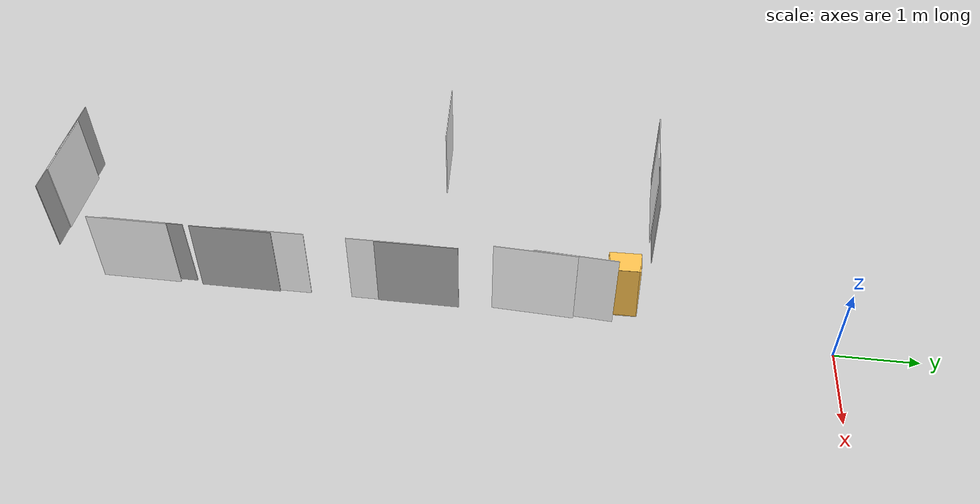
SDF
<sdf version="1.6">
 <world name="default">
  <model name="ground_plane">
   <static>1</static>
   <link name="link">
    <collision name="collision">
     <geometry><plane><normal>0 0 1</normal><size>100 100</size></plane></geometry>
     <surface><friction><ode><mu>100</mu><mu2>50</mu2></ode></friction></surface>
    </collision>
    <visual name="visual">
     <cast_shadows>0</cast_shadows>
     <geometry><plane><normal>0 0 1</normal><size>100 100</size></plane></geometry>
     <material>
      <script><uri>file://media/materials/scripts/gazebo.material</uri><name>Gazebo/Grey</name></script>
     </material>
    </visual>
   </link>
  </model>
  <model name="Gas_2">
   <link name="link_0">
    <pose>4e-06 0 0 0 -0 0</pose>
    <inertial>
     <mass>1</mass>
     <inertia>
      <ixx>0.166667</ixx>
      <ixy>0</ixy>
      <ixz>0</ixz>
      <iyy>0.166667</iyy>
      <iyz>0</iyz>
      <izz>0.166667</izz>
     </inertia>
    </inertial>
    <visual name="visual">
     <geometry><box><size>0.01 1 1</size></box></geometry>
     <material>
      <lighting>1</lighting>
      <script>
       <uri>model://gas_2_N/materials/scripts</uri>
       <uri>model://gas_2_N/materials/textures</uri>
       <name>Gas/Gas2N</name>
      </script>
      <ambient>1 1 1 1</ambient>
      <diffuse>1 1 1 1</diffuse>
      <specular>0.01 0.01 0.01 1</specular>
      <emissive>1 1 1 1</emissive>
     </material>
     <cast_shadows>0</cast_shadows>
    </visual>
    <collision name="collision">
     <geometry><box><size>0.01 1 1</size></box></geometry>
     <surface>
      <friction>
       <ode><mu>1</mu><mu2>1</mu2><fdir1>0 0 0</fdir1><slip1>0</slip1><slip2>0</slip2></ode>
       <torsional>
        <coefficient>1</coefficient>
        <patch_radius>0</patch_radius>
        <surface_radius>0</surface_radius>
        <use_patch_radius>1</use_patch_radius>
        <ode><slip>0</slip></ode>
       </torsional>
      </friction>
      <bounce><restitution_coefficient>0</restitution_coefficient><threshold>1e+06</threshold></bounce>
      <contact>
       <collide_without_contact>0</collide_without_contact>
       <collide_without_contact_bitmask>1</collide_without_contact_bitmask>
       <collide_bitmask>1</collide_bitmask>
       <ode>
        <soft_cfm>0</soft_cfm>
        <soft_erp>0.2</soft_erp>
        <kp>1e+13</kp>
        <kd>1</kd>
        <max_vel>0.01</max_vel>
        <min_depth>0</min_depth>
       </ode>
       <bullet>
        <split_impulse>1</split_impulse>
        <split_impulse_penetration_threshold>-0.01</split_impulse_penetration_threshold>
        <soft_cfm>0</soft_cfm>
        <soft_erp>0.2</soft_erp>
        <kp>1e+13</kp>
        <kd>1</kd>
       </bullet>
      </contact>
     </surface>
    </collision>
   </link>
   <static>0</static>
   <pose>-0.222112 -8.4847 0.499972 -6e-06 0.007088 -0.005093</pose>
  </model>
  <model name="Gas_4_1">
   <link name="link_0">
    <pose>4e-06 0 0 0 -0 0</pose>
    <inertial>
     <mass>1</mass>
     <inertia>
      <ixx>0.166667</ixx>
      <ixy>0</ixy>
      <ixz>0</ixz>
      <iyy>0.166667</iyy>
      <iyz>0</iyz>
      <izz>0.166667</izz>
     </inertia>
    </inertial>
    <visual name="visual">
     <geometry><box><size>0.01 1 1</size></box></geometry>
     <material>
      <lighting>1</lighting>
      <script>
       <uri>model://gas_4_N/materials/scripts</uri>
       <uri>model://gas_4_N/materials/textures</uri>
       <name>Gas/Gas4N</name>
      </script>
      <ambient>1 1 1 1</ambient>
      <diffuse>1 1 1 1</diffuse>
      <specular>0.01 0.01 0.01 1</specular>
      <emissive>1 1 1 1</emissive>
     </material>
     <cast_shadows>0</cast_shadows>
    </visual>
    <collision name="collision">
     <geometry><box><size>0.01 1 1</size></box></geometry>
     <surface>
      <friction>
       <ode><mu>1</mu><mu2>1</mu2><fdir1>0 0 0</fdir1><slip1>0</slip1><slip2>0</slip2></ode>
       <torsional>
        <coefficient>1</coefficient>
        <patch_radius>0</patch_radius>
        <surface_radius>0</surface_radius>
        <use_patch_radius>1</use_patch_radius>
        <ode><slip>0</slip></ode>
       </torsional>
      </friction>
      <bounce><restitution_coefficient>0</restitution_coefficient><threshold>1e+06</threshold></bounce>
      <contact>
       <collide_without_contact>0</collide_without_contact>
       <collide_without_contact_bitmask>1</collide_without_contact_bitmask>
       <collide_bitmask>1</collide_bitmask>
       <ode>
        <soft_cfm>0</soft_cfm>
        <soft_erp>0.2</soft_erp>
        <kp>1e+13</kp>
        <kd>1</kd>
        <max_vel>0.01</max_vel>
        <min_depth>0</min_depth>
       </ode>
       <bullet>
        <split_impulse>1</split_impulse>
        <split_impulse_penetration_threshold>-0.01</split_impulse_penetration_threshold>
        <soft_cfm>0</soft_cfm>
        <soft_erp>0.2</soft_erp>
        <kp>1e+13</kp>
        <kd>1</kd>
       </bullet>
      </contact>
     </surface>
    </collision>
   </link>
   <static>0</static>
   <pose>-1.50529 -9.77758 0.499816 -0 -0.038214 1.57007</pose>
  </model>
  <model name="Gas_1_0">
   <link name="link_0">
    <pose>4e-06 0 0 0 -0 0</pose>
    <inertial>
     <mass>1</mass>
     <inertia>
      <ixx>0.166667</ixx>
      <ixy>0</ixy>
      <ixz>0</ixz>
      <iyy>0.166667</iyy>
      <iyz>0</iyz>
      <izz>0.166667</izz>
     </inertia>
    </inertial>
    <visual name="visual">
     <geometry><box><size>0.01 1 1</size></box></geometry>
     <material>
      <lighting>1</lighting>
      <script>
       <uri>model://gas_1_N/materials/scripts</uri>
       <uri>model://gas_1_N/materials/textures</uri>
       <name>Gas/Gas1N</name>
      </script>
      <ambient>1 1 1 1</ambient>
      <diffuse>1 1 1 1</diffuse>
      <specular>0.01 0.01 0.01 1</specular>
      <emissive>1 1 1 1</emissive>
     </material>
     <cast_shadows>0</cast_shadows>
    </visual>
    <collision name="collision">
     <geometry><box><size>0.01 1 1</size></box></geometry>
     <surface>
      <friction>
       <ode><mu>1</mu><mu2>1</mu2><fdir1>0 0 0</fdir1><slip1>0</slip1><slip2>0</slip2></ode>
       <torsional>
        <coefficient>1</coefficient>
        <patch_radius>0</patch_radius>
        <surface_radius>0</surface_radius>
        <use_patch_radius>1</use_patch_radius>
        <ode><slip>0</slip></ode>
       </torsional>
      </friction>
      <bounce><restitution_coefficient>0</restitution_coefficient><threshold>1e+06</threshold></bounce>
      <contact>
       <collide_without_contact>0</collide_without_contact>
       <collide_without_contact_bitmask>1</collide_without_contact_bitmask>
       <collide_bitmask>1</collide_bitmask>
       <ode>
        <soft_cfm>0</soft_cfm>
        <soft_erp>0.2</soft_erp>
        <kp>1e+13</kp>
        <kd>1</kd>
        <max_vel>0.01</max_vel>
        <min_depth>0</min_depth>
       </ode>
       <bullet>
        <split_impulse>1</split_impulse>
        <split_impulse_penetration_threshold>-0.01</split_impulse_penetration_threshold>
        <soft_cfm>0</soft_cfm>
        <soft_erp>0.2</soft_erp>
        <kp>1e+13</kp>
        <kd>1</kd>
       </bullet>
      </contact>
     </surface>
    </collision>
   </link>
   <static>0</static>
   <pose>-0.236814 -6.81898 0.5 0 -2e-06 0.002062</pose>
  </model>
  <model name="Gas_4_0">
   <link name="link_0">
    <pose>4e-06 0 0 0 -0 0</pose>
    <inertial>
     <mass>1</mass>
     <inertia>
      <ixx>0.166667</ixx>
      <ixy>0</ixy>
      <ixz>0</ixz>
      <iyy>0.166667</iyy>
      <iyz>0</iyz>
      <izz>0.166667</izz>
     </inertia>
    </inertial>
    <visual name="visual">
     <geometry><box><size>0.01 1 1</size></box></geometry>
     <material>
      <lighting>1</lighting>
      <script>
       <uri>model://gas_4_N/materials/scripts</uri>
       <uri>model://gas_4_N/materials/textures</uri>
       <name>Gas/Gas4N</name>
      </script>
      <ambient>1 1 1 1</ambient>
      <diffuse>1 1 1 1</diffuse>
      <specular>0.01 0.01 0.01 1</specular>
      <emissive>1 1 1 1</emissive>
     </material>
     <cast_shadows>0</cast_shadows>
    </visual>
    <collision name="collision">
     <geometry><box><size>0.01 1 1</size></box></geometry>
     <surface>
      <friction>
       <ode><mu>1</mu><mu2>1</mu2><fdir1>0 0 0</fdir1><slip1>0</slip1><slip2>0</slip2></ode>
       <torsional>
        <coefficient>1</coefficient>
        <patch_radius>0</patch_radius>
        <surface_radius>0</surface_radius>
        <use_patch_radius>1</use_patch_radius>
        <ode><slip>0</slip></ode>
       </torsional>
      </friction>
      <bounce><restitution_coefficient>0</restitution_coefficient><threshold>1e+06</threshold></bounce>
      <contact>
       <collide_without_contact>0</collide_without_contact>
       <collide_without_contact_bitmask>1</collide_without_contact_bitmask>
       <collide_bitmask>1</collide_bitmask>
       <ode>
        <soft_cfm>0</soft_cfm>
        <soft_erp>0.2</soft_erp>
        <kp>1e+13</kp>
        <kd>1</kd>
        <max_vel>0.01</max_vel>
        <min_depth>0</min_depth>
       </ode>
       <bullet>
        <split_impulse>1</split_impulse>
        <split_impulse_penetration_threshold>-0.01</split_impulse_penetration_threshold>
        <soft_cfm>0</soft_cfm>
        <soft_erp>0.2</soft_erp>
        <kp>1e+13</kp>
        <kd>1</kd>
       </bullet>
      </contact>
     </surface>
    </collision>
   </link>
   <static>0</static>
   <pose>-0.234542 -5.30976 0.5 0 -1e-06 -0.000196</pose>
  </model>
  <model name="Gas_3_1">
   <link name="link_0">
    <pose>4e-06 0 0 0 -0 0</pose>
    <inertial>
     <mass>1</mass>
     <inertia>
      <ixx>0.166667</ixx>
      <ixy>0</ixy>
      <ixz>0</ixz>
      <iyy>0.166667</iyy>
      <iyz>0</iyz>
      <izz>0.166667</izz>
     </inertia>
    </inertial>
    <visual name="visual">
     <geometry><box><size>0.01 1 1</size></box></geometry>
     <material>
      <lighting>1</lighting>
      <script>
       <uri>model://gas_3_N/materials/scripts</uri>
       <uri>model://gas_3_N/materials/textures</uri>
       <name>Gas/Gas3N</name>
      </script>
      <ambient>1 1 1 1</ambient>
      <diffuse>1 1 1 1</diffuse>
      <specular>0.01 0.01 0.01 1</specular>
      <emissive>1 1 1 1</emissive>
     </material>
     <cast_shadows>0</cast_shadows>
    </visual>
    <collision name="collision">
     <geometry><box><size>0.01 1 1</size></box></geometry>
     <surface>
      <friction>
       <ode><mu>1</mu><mu2>1</mu2><fdir1>0 0 0</fdir1><slip1>0</slip1><slip2>0</slip2></ode>
       <torsional>
        <coefficient>1</coefficient>
        <patch_radius>0</patch_radius>
        <surface_radius>0</surface_radius>
        <use_patch_radius>1</use_patch_radius>
        <ode><slip>0</slip></ode>
       </torsional>
      </friction>
      <bounce><restitution_coefficient>0</restitution_coefficient><threshold>1e+06</threshold></bounce>
      <contact>
       <collide_without_contact>0</collide_without_contact>
       <collide_without_contact_bitmask>1</collide_without_contact_bitmask>
       <collide_bitmask>1</collide_bitmask>
       <ode>
        <soft_cfm>0</soft_cfm>
        <soft_erp>0.2</soft_erp>
        <kp>1e+13</kp>
        <kd>1</kd>
        <max_vel>0.01</max_vel>
        <min_depth>0</min_depth>
       </ode>
       <bullet>
        <split_impulse>1</split_impulse>
        <split_impulse_penetration_threshold>-0.01</split_impulse_penetration_threshold>
        <soft_cfm>0</soft_cfm>
        <soft_erp>0.2</soft_erp>
        <kp>1e+13</kp>
        <kd>1</kd>
       </bullet>
      </contact>
     </surface>
    </collision>
   </link>
   <static>0</static>
   <pose>-0.266643 -3.56804 0.499694 0 -0.046381 -0.054955</pose>
  </model>
  <model name="Gas_1_2">
   <link name="link_0">
    <pose>4e-06 0 0 0 -0 0</pose>
    <inertial>
     <mass>1</mass>
     <inertia>
      <ixx>0.166667</ixx>
      <ixy>0</ixy>
      <ixz>0</ixz>
      <iyy>0.166667</iyy>
      <iyz>0</iyz>
      <izz>0.166667</izz>
     </inertia>
    </inertial>
    <visual name="visual">
     <geometry><box><size>0.01 1 1</size></box></geometry>
     <material>
      <lighting>1</lighting>
      <script>
       <uri>model://gas_1_N/materials/scripts</uri>
       <uri>model://gas_1_N/materials/textures</uri>
       <name>Gas/Gas1N</name>
      </script>
      <ambient>1 1 1 1</ambient>
      <diffuse>1 1 1 1</diffuse>
      <specular>0.01 0.01 0.01 1</specular>
      <emissive>1 1 1 1</emissive>
     </material>
     <cast_shadows>0</cast_shadows>
    </visual>
    <collision name="collision">
     <geometry><box><size>0.01 1 1</size></box></geometry>
     <surface>
      <friction>
       <ode><mu>1</mu><mu2>1</mu2><fdir1>0 0 0</fdir1><slip1>0</slip1><slip2>0</slip2></ode>
       <torsional>
        <coefficient>1</coefficient>
        <patch_radius>0</patch_radius>
        <surface_radius>0</surface_radius>
        <use_patch_radius>1</use_patch_radius>
        <ode><slip>0</slip></ode>
       </torsional>
      </friction>
      <bounce><restitution_coefficient>0</restitution_coefficient><threshold>1e+06</threshold></bounce>
      <contact>
       <collide_without_contact>0</collide_without_contact>
       <collide_without_contact_bitmask>1</collide_without_contact_bitmask>
       <collide_bitmask>1</collide_bitmask>
       <ode>
        <soft_cfm>0</soft_cfm>
        <soft_erp>0.2</soft_erp>
        <kp>1e+13</kp>
        <kd>1</kd>
        <max_vel>0.01</max_vel>
        <min_depth>0</min_depth>
       </ode>
       <bullet>
        <split_impulse>1</split_impulse>
        <split_impulse_penetration_threshold>-0.01</split_impulse_penetration_threshold>
        <soft_cfm>0</soft_cfm>
        <soft_erp>0.2</soft_erp>
        <kp>1e+13</kp>
        <kd>1</kd>
       </bullet>
      </contact>
     </surface>
    </collision>
   </link>
   <static>0</static>
   <pose>-2.16004 -2.14796 0.5 -0 -2e-06 1.56216</pose>
  </model>
  <model name="Gas_1_3">
   <link name="link_0">
    <pose>4e-06 0 0 0 -0 0</pose>
    <inertial>
     <mass>1</mass>
     <inertia>
      <ixx>0.166667</ixx>
      <ixy>0</ixy>
      <ixz>0</ixz>
      <iyy>0.166667</iyy>
      <iyz>0</iyz>
      <izz>0.166667</izz>
     </inertia>
    </inertial>
    <visual name="visual">
     <geometry><box><size>0.01 1 1</size></box></geometry>
     <material>
      <lighting>1</lighting>
      <script>
       <uri>model://gas_1_N/materials/scripts</uri>
       <uri>model://gas_1_N/materials/textures</uri>
       <name>Gas/Gas1N</name>
      </script>
      <ambient>1 1 1 1</ambient>
      <diffuse>1 1 1 1</diffuse>
      <specular>0.01 0.01 0.01 1</specular>
      <emissive>1 1 1 1</emissive>
     </material>
     <cast_shadows>0</cast_shadows>
    </visual>
    <collision name="collision">
     <geometry><box><size>0.01 1 1</size></box></geometry>
     <surface>
      <friction>
       <ode><mu>1</mu><mu2>1</mu2><fdir1>0 0 0</fdir1><slip1>0</slip1><slip2>0</slip2></ode>
       <torsional>
        <coefficient>1</coefficient>
        <patch_radius>0</patch_radius>
        <surface_radius>0</surface_radius>
        <use_patch_radius>1</use_patch_radius>
        <ode><slip>0</slip></ode>
       </torsional>
      </friction>
      <bounce><restitution_coefficient>0</restitution_coefficient><threshold>1e+06</threshold></bounce>
      <contact>
       <collide_without_contact>0</collide_without_contact>
       <collide_without_contact_bitmask>1</collide_without_contact_bitmask>
       <collide_bitmask>1</collide_bitmask>
       <ode>
        <soft_cfm>0</soft_cfm>
        <soft_erp>0.2</soft_erp>
        <kp>1e+13</kp>
        <kd>1</kd>
        <max_vel>0.01</max_vel>
        <min_depth>0</min_depth>
       </ode>
       <bullet>
        <split_impulse>1</split_impulse>
        <split_impulse_penetration_threshold>-0.01</split_impulse_penetration_threshold>
        <soft_cfm>0</soft_cfm>
        <soft_erp>0.2</soft_erp>
        <kp>1e+13</kp>
        <kd>1</kd>
       </bullet>
      </contact>
     </surface>
    </collision>
   </link>
   <static>0</static>
   <pose>-2.79683 -4.93888 0.5 0 -2e-06 1.63067</pose>
  </model>
  <model name="Wall_Cabinet_15x30">
   <pose>-0.396854 -2.70414 0.461376 -1.54947 0 0</pose>
   <link name="Wall_0">
    <pose>0 0.374 0.192 0 -0 0</pose>
    <inertial>
     <mass>0.9882</mass>
     <inertia><ixx>0.0072</ixx><iyy>0.0194</iyy><izz>0.0122</izz><ixy>0</ixy><ixz>0</ixz><iyz>0</iyz></inertia>
    </inertial>
    <collision name="Wall_0_Collision"><geometry><box><size>0.296 0.02 0.384</size></box></geometry></collision>
    <visual name="Wall_0_Visual">
     <geometry><box><size>0.296 0.02 0.384</size></box></geometry>
     <material>
      <script><uri>file://media/materials/scripts/gazebo.material</uri><name>Gazebo/Grey</name></script>
      <ambient>1 0.764706 0.305882 1</ambient>
     </material>
    </visual>
   </link>
   <joint name="0_2" type="fixed">
    <pose>0 0 0.192 0 -0 0</pose>
    <parent>Wall_2</parent>
    <child>Wall_0</child>
    <axis>
     <xyz>0 0 1</xyz>
     <use_parent_model_frame>0</use_parent_model_frame>
     <limit><lower>-1e+16</lower><upper>1e+16</upper></limit>
    </axis>
   </joint>
   <joint name="0_4" type="fixed">
    <pose>0 0 -0.192 0 -0 0</pose>
    <parent>Wall_4</parent>
    <child>Wall_0</child>
    <axis>
     <xyz>0 0 1</xyz>
     <use_parent_model_frame>0</use_parent_model_frame>
     <limit><lower>-1e+16</lower><upper>1e+16</upper></limit>
    </axis>
   </joint>
   <joint name="0_15" type="fixed">
    <pose>0.148 0 0 0 -0 0</pose>
    <parent>Wall_15</parent>
    <child>Wall_0</child>
    <axis>
     <xyz>1 0 0</xyz>
     <use_parent_model_frame>0</use_parent_model_frame>
     <limit><lower>-1e+16</lower><upper>1e+16</upper></limit>
    </axis>
   </joint>
   <link name="Wall_11">
    <pose>0 -0.132768 0.192 0 -0 0</pose>
    <inertial>
     <mass>0.9882</mass>
     <inertia><ixx>0.0072</ixx><iyy>0.0194</iyy><izz>0.0122</izz><ixy>0</ixy><ixz>0</ixz><iyz>0</iyz></inertia>
    </inertial>
    <collision name="Wall_11_Collision"><geometry><box><size>0.296 0.02 0.384</size></box></geometry></collision>
    <visual name="Wall_11_Visual">
     <geometry><box><size>0.296 0.02 0.384</size></box></geometry>
     <material>
      <script><uri>file://media/materials/scripts/gazebo.material</uri><name>Gazebo/Grey</name></script>
      <ambient>1 0.764706 0.305882 1</ambient>
     </material>
    </visual>
   </link>
   <joint name="11_2" type="fixed">
    <pose>0 0 0.192 0 -0 0</pose>
    <parent>Wall_2</parent>
    <child>Wall_11</child>
    <axis>
     <xyz>0 0 1</xyz>
     <use_parent_model_frame>0</use_parent_model_frame>
     <limit><lower>-1e+16</lower><upper>1e+16</upper></limit>
    </axis>
   </joint>
   <joint name="11_4" type="fixed">
    <pose>0 0 -0.192 0 -0 0</pose>
    <parent>Wall_4</parent>
    <child>Wall_11</child>
    <axis>
     <xyz>0 0 1</xyz>
     <use_parent_model_frame>0</use_parent_model_frame>
     <limit><lower>-1e+16</lower><upper>1e+16</upper></limit>
    </axis>
   </joint>
   <joint name="11_15" type="fixed">
    <pose>0.148 0 0 0 -0 0</pose>
    <parent>Wall_15</parent>
    <child>Wall_11</child>
    <axis>
     <xyz>1 0 0</xyz>
     <use_parent_model_frame>0</use_parent_model_frame>
     <limit><lower>-1e+16</lower><upper>1e+16</upper></limit>
    </axis>
   </joint>
   <link name="Wall_15">
    <pose>0.138 0 0.19 0 -0 0</pose>
    <inertial>
     <mass>2.5241</mass>
     <inertia><ixx>0.0305</ixx><iyy>0.1229</iyy><izz>0.1532</izz><ixy>0</ixy><ixz>0</ixz><iyz>0</iyz></inertia>
    </inertial>
    <collision name="Wall_15_Collision"><geometry><box><size>0.02 0.764 0.38</size></box></geometry></collision>
    <visual name="Wall_15_Visual">
     <geometry><box><size>0.02 0.764 0.38</size></box></geometry>
     <material>
      <script><uri>file://media/materials/scripts/gazebo.material</uri><name>Gazebo/Grey</name></script>
      <ambient>1 0.764706 0.305882 1</ambient>
     </material>
    </visual>
   </link>
   <joint name="15_2" type="fixed">
    <pose>0 0 0.19 0 -0 0</pose>
    <parent>Wall_2</parent>
    <child>Wall_15</child>
    <axis>
     <xyz>0 0 1</xyz>
     <use_parent_model_frame>0</use_parent_model_frame>
     <limit><lower>-1e+16</lower><upper>1e+16</upper></limit>
    </axis>
   </joint>
   <joint name="15_4" type="fixed">
    <pose>0 0 -0.19 0 -0 0</pose>
    <parent>Wall_4</parent>
    <child>Wall_15</child>
    <axis>
     <xyz>0 0 1</xyz>
     <use_parent_model_frame>0</use_parent_model_frame>
     <limit><lower>-1e+16</lower><upper>1e+16</upper></limit>
    </axis>
   </joint>
   <link name="Wall_2">
    <pose>0 0 0.374 0 -0 0</pose>
    <inertial>
     <mass>1.9765</mass>
     <inertia><ixx>0.0145</ixx><iyy>0.1116</iyy><izz>0.0972</izz><ixy>0</ixy><ixz>0</ixz><iyz>0</iyz></inertia>
    </inertial>
    <collision name="Wall_2_Collision"><geometry><box><size>0.296 0.768 0.02</size></box></geometry></collision>
    <visual name="Wall_2_Visual">
     <geometry><box><size>0.296 0.768 0.02</size></box></geometry>
     <material>
      <script><uri>file://media/materials/scripts/gazebo.material</uri><name>Gazebo/Grey</name></script>
      <ambient>1 0.764706 0.305882 1</ambient>
     </material>
    </visual>
   </link>
   <link name="Wall_4">
    <pose>0 0 0.01 0 -0 0</pose>
    <inertial>
     <mass>1.9765</mass>
     <inertia><ixx>0.0145</ixx><iyy>0.1116</iyy><izz>0.0972</izz><ixy>0</ixy><ixz>0</ixz><iyz>0</iyz></inertia>
    </inertial>
    <collision name="Wall_4_Collision"><geometry><box><size>0.296 0.768 0.02</size></box></geometry></collision>
    <visual name="Wall_4_Visual">
     <geometry><box><size>0.296 0.768 0.02</size></box></geometry>
     <material>
      <script><uri>file://media/materials/scripts/gazebo.material</uri><name>Gazebo/Grey</name></script>
      <ambient>1 0.764706 0.305882 1</ambient>
     </material>
    </visual>
    <pose>-0.181124 0 0 0 0 -1.5708</pose>
   </link>
   <link name="Wall_6">
    <pose>0 -0.374 0.192 0 -0 0</pose>
    <inertial>
     <mass>0.9882</mass>
     <inertia><ixx>0.0072</ixx><iyy>0.0194</iyy><izz>0.0122</izz><ixy>0</ixy><ixz>0</ixz><iyz>0</iyz></inertia>
    </inertial>
    <collision name="Wall_6_Collision"><geometry><box><size>0.296 0.02 0.384</size></box></geometry></collision>
    <visual name="Wall_6_Visual">
     <geometry><box><size>0.296 0.02 0.384</size></box></geometry>
     <material>
      <script><uri>file://media/materials/scripts/gazebo.material</uri><name>Gazebo/Grey</name></script>
      <ambient>1 0.764706 0.305882 1</ambient>
     </material>
    </visual>
   </link>
   <joint name="6_2" type="fixed">
    <pose>0 0 0.192 0 -0 0</pose>
    <parent>Wall_2</parent>
    <child>Wall_6</child>
    <axis>
     <xyz>0 0 1</xyz>
     <use_parent_model_frame>0</use_parent_model_frame>
     <limit><lower>-1e+16</lower><upper>1e+16</upper></limit>
    </axis>
   </joint>
   <joint name="6_4" type="fixed">
    <pose>0 0 -0.192 0 -0 0</pose>
    <parent>Wall_4</parent>
    <child>Wall_6</child>
    <axis>
     <xyz>0 0 1</xyz>
     <use_parent_model_frame>0</use_parent_model_frame>
     <limit><lower>-1e+16</lower><upper>1e+16</upper></limit>
    </axis>
   </joint>
   <joint name="6_15" type="fixed">
    <pose>0.148 0 0 0 -0 0</pose>
    <parent>Wall_15</parent>
    <child>Wall_6</child>
    <axis>
     <xyz>1 0 0</xyz>
     <use_parent_model_frame>0</use_parent_model_frame>
     <limit><lower>-1e+16</lower><upper>1e+16</upper></limit>
    </axis>
   </joint>
   <link name="Wall_8">
    <pose>0 0.120833 0.192 0 -0 0</pose>
    <inertial>
     <mass>0.9882</mass>
     <inertia><ixx>0.0072</ixx><iyy>0.0194</iyy><izz>0.0122</izz><ixy>0</ixy><ixz>0</ixz><iyz>0</iyz></inertia>
    </inertial>
    <collision name="Wall_8_Collision"><geometry><box><size>0.296 0.02 0.384</size></box></geometry></collision>
    <visual name="Wall_8_Visual">
     <geometry><box><size>0.296 0.02 0.384</size></box></geometry>
     <material>
      <script><uri>file://media/materials/scripts/gazebo.material</uri><name>Gazebo/Grey</name></script>
      <ambient>1 0.764706 0.305882 1</ambient>
     </material>
    </visual>
   </link>
   <joint name="8_2" type="fixed">
    <pose>0 0 0.192 0 -0 0</pose>
    <parent>Wall_2</parent>
    <child>Wall_8</child>
    <axis>
     <xyz>0 0 1</xyz>
     <use_parent_model_frame>0</use_parent_model_frame>
     <limit><lower>-1e+16</lower><upper>1e+16</upper></limit>
    </axis>
   </joint>
   <joint name="8_4" type="fixed">
    <pose>0 0 -0.192 0 -0 0</pose>
    <parent>Wall_4</parent>
    <child>Wall_8</child>
    <axis>
     <xyz>0 0 1</xyz>
     <use_parent_model_frame>0</use_parent_model_frame>
     <limit><lower>-1e+16</lower><upper>1e+16</upper></limit>
    </axis>
   </joint>
   <joint name="8_15" type="fixed">
    <pose>0.148 0 0 0 -0 0</pose>
    <parent>Wall_15</parent>
    <child>Wall_8</child>
    <axis>
     <xyz>1 0 0</xyz>
     <use_parent_model_frame>0</use_parent_model_frame>
     <limit><lower>-1e+16</lower><upper>1e+16</upper></limit>
    </axis>
   </joint>
   <static>1</static>
  </model>
  <model name="Fire_1_2">
   <link name="link_0">
    <pose>4e-06 0 0 0 -0 0</pose>
    <inertial>
     <mass>1</mass>
     <inertia>
      <ixx>0.166667</ixx>
      <ixy>0</ixy>
      <ixz>0</ixz>
      <iyy>0.166667</iyy>
      <iyz>0</iyz>
      <izz>0.166667</izz>
     </inertia>
    </inertial>
    <visual name="visual">
     <geometry><box><size>0.01 1 1</size></box></geometry>
     <material>
      <lighting>1</lighting>
      <script>
       <uri>model://fire_1/materials/scripts</uri>
       <uri>model://fire_1/materials/textures</uri>
       <name>Fire/Fire1</name>
      </script>
      <ambient>1 1 1 1</ambient>
      <diffuse>1 1 1 1</diffuse>
      <specular>0.01 0.01 0.01 1</specular>
      <emissive>1 1 1 1</emissive>
     </material>
     <cast_shadows>0</cast_shadows>
    </visual>
    <collision name="collision">
     <geometry><box><size>0.01 1 1</size></box></geometry>
     <surface>
      <friction>
       <ode><mu>1</mu><mu2>1</mu2><fdir1>0 0 0</fdir1><slip1>0</slip1><slip2>0</slip2></ode>
       <torsional>
        <coefficient>1</coefficient>
        <patch_radius>0</patch_radius>
        <surface_radius>0</surface_radius>
        <use_patch_radius>1</use_patch_radius>
        <ode><slip>0</slip></ode>
       </torsional>
      </friction>
      <bounce><restitution_coefficient>0</restitution_coefficient><threshold>1e+06</threshold></bounce>
      <contact>
       <collide_without_contact>0</collide_without_contact>
       <collide_without_contact_bitmask>1</collide_without_contact_bitmask>
       <collide_bitmask>1</collide_bitmask>
       <ode>
        <soft_cfm>0</soft_cfm>
        <soft_erp>0.2</soft_erp>
        <kp>1e+13</kp>
        <kd>1</kd>
        <max_vel>0.01</max_vel>
        <min_depth>0</min_depth>
       </ode>
       <bullet>
        <split_impulse>1</split_impulse>
        <split_impulse_penetration_threshold>-0.01</split_impulse_penetration_threshold>
        <soft_cfm>0</soft_cfm>
        <soft_erp>0.2</soft_erp>
        <kp>1e+13</kp>
        <kd>1</kd>
       </bullet>
      </contact>
     </surface>
    </collision>
   </link>
   <static>0</static>
   <pose>-0.262637 -3.09485 0.499981 -0 -0.023259 -0.070066</pose>
  </model>
  <model name="fire_2_0">
   <link name="link_0">
    <pose>4e-06 0 0 0 -0 0</pose>
    <inertial>
     <mass>1</mass>
     <inertia>
      <ixx>0.166667</ixx>
      <ixy>0</ixy>
      <ixz>0</ixz>
      <iyy>0.166667</iyy>
      <iyz>0</iyz>
      <izz>0.166667</izz>
     </inertia>
    </inertial>
    <visual name="visual">
     <geometry><box><size>0.01 1 1</size></box></geometry>
     <material>
      <lighting>1</lighting>
      <script>
       <uri>model://fire_2/materials/scripts</uri>
       <uri>model://fire_2/materials/textures</uri>
       <name>Fire/Fire2</name>
      </script>
      <ambient>0.3 0.3 0.3 1</ambient>
      <diffuse>0.7 0.7 0.7 1</diffuse>
      <specular>0.01 0.01 0.01 1</specular>
      <emissive>1 1 1 1</emissive>
     </material>
     <cast_shadows>0</cast_shadows>
    </visual>
    <collision name="collision">
     <geometry><box><size>0.01 1 1</size></box></geometry>
     <surface>
      <friction>
       <ode><mu>1</mu><mu2>1</mu2><fdir1>0 0 0</fdir1><slip1>0</slip1><slip2>0</slip2></ode>
       <torsional>
        <coefficient>1</coefficient>
        <patch_radius>0</patch_radius>
        <surface_radius>0</surface_radius>
        <use_patch_radius>1</use_patch_radius>
        <ode><slip>0</slip></ode>
       </torsional>
      </friction>
      <bounce><restitution_coefficient>0</restitution_coefficient><threshold>1e+06</threshold></bounce>
      <contact>
       <collide_without_contact>0</collide_without_contact>
       <collide_without_contact_bitmask>1</collide_without_contact_bitmask>
       <collide_bitmask>1</collide_bitmask>
       <ode>
        <soft_cfm>0</soft_cfm>
        <soft_erp>0.2</soft_erp>
        <kp>1e+13</kp>
        <kd>1</kd>
        <max_vel>0.01</max_vel>
        <min_depth>0</min_depth>
       </ode>
       <bullet>
        <split_impulse>1</split_impulse>
        <split_impulse_penetration_threshold>-0.01</split_impulse_penetration_threshold>
        <soft_cfm>0</soft_cfm>
        <soft_erp>0.2</soft_erp>
        <kp>1e+13</kp>
        <kd>1</kd>
       </bullet>
      </contact>
     </surface>
    </collision>
   </link>
   <static>0</static>
   <pose>-0.216223 -7.20771 0.5 0 -1e-06 -0.00038</pose>
  </model>
  <model name="fire_2_1">
   <link name="link_0">
    <pose>4e-06 0 0 0 -0 0</pose>
    <inertial>
     <mass>1</mass>
     <inertia>
      <ixx>0.166667</ixx>
      <ixy>0</ixy>
      <ixz>0</ixz>
      <iyy>0.166667</iyy>
      <iyz>0</iyz>
      <izz>0.166667</izz>
     </inertia>
    </inertial>
    <visual name="visual">
     <geometry><box><size>0.01 1 1</size></box></geometry>
     <material>
      <lighting>1</lighting>
      <script>
       <uri>model://fire_2/materials/scripts</uri>
       <uri>model://fire_2/materials/textures</uri>
       <name>Fire/Fire2</name>
      </script>
      <ambient>0.3 0.3 0.3 1</ambient>
      <diffuse>0.7 0.7 0.7 1</diffuse>
      <specular>0.01 0.01 0.01 1</specular>
      <emissive>1 1 1 1</emissive>
     </material>
     <cast_shadows>0</cast_shadows>
    </visual>
    <collision name="collision">
     <geometry><box><size>0.01 1 1</size></box></geometry>
     <surface>
      <friction>
       <ode><mu>1</mu><mu2>1</mu2><fdir1>0 0 0</fdir1><slip1>0</slip1><slip2>0</slip2></ode>
       <torsional>
        <coefficient>1</coefficient>
        <patch_radius>0</patch_radius>
        <surface_radius>0</surface_radius>
        <use_patch_radius>1</use_patch_radius>
        <ode><slip>0</slip></ode>
       </torsional>
      </friction>
      <bounce><restitution_coefficient>0</restitution_coefficient><threshold>1e+06</threshold></bounce>
      <contact>
       <collide_without_contact>0</collide_without_contact>
       <collide_without_contact_bitmask>1</collide_without_contact_bitmask>
       <collide_bitmask>1</collide_bitmask>
       <ode>
        <soft_cfm>0</soft_cfm>
        <soft_erp>0.2</soft_erp>
        <kp>1e+13</kp>
        <kd>1</kd>
        <max_vel>0.01</max_vel>
        <min_depth>0</min_depth>
       </ode>
       <bullet>
        <split_impulse>1</split_impulse>
        <split_impulse_penetration_threshold>-0.01</split_impulse_penetration_threshold>
        <soft_cfm>0</soft_cfm>
        <soft_erp>0.2</soft_erp>
        <kp>1e+13</kp>
        <kd>1</kd>
       </bullet>
      </contact>
     </surface>
    </collision>
   </link>
   <static>0</static>
   <pose>-1.81137 -9.80332 0.499948 7e-06 -0.027079 1.57079</pose>
  </model>
  <model name="fire_2_2">
   <link name="link_0">
    <pose>4e-06 0 0 0 -0 0</pose>
    <inertial>
     <mass>1</mass>
     <inertia>
      <ixx>0.166667</ixx>
      <ixy>0</ixy>
      <ixz>0</ixz>
      <iyy>0.166667</iyy>
      <iyz>0</iyz>
      <izz>0.166667</izz>
     </inertia>
    </inertial>
    <visual name="visual">
     <geometry><box><size>0.01 1 1</size></box></geometry>
     <material>
      <lighting>1</lighting>
      <script>
       <uri>model://fire_2/materials/scripts</uri>
       <uri>model://fire_2/materials/textures</uri>
       <name>Fire/Fire2</name>
      </script>
      <ambient>0.3 0.3 0.3 1</ambient>
      <diffuse>0.7 0.7 0.7 1</diffuse>
      <specular>0.01 0.01 0.01 1</specular>
      <emissive>1 1 1 1</emissive>
     </material>
     <cast_shadows>0</cast_shadows>
    </visual>
    <collision name="collision">
     <geometry><box><size>0.01 1 1</size></box></geometry>
     <surface>
      <friction>
       <ode><mu>1</mu><mu2>1</mu2><fdir1>0 0 0</fdir1><slip1>0</slip1><slip2>0</slip2></ode>
       <torsional>
        <coefficient>1</coefficient>
        <patch_radius>0</patch_radius>
        <surface_radius>0</surface_radius>
        <use_patch_radius>1</use_patch_radius>
        <ode><slip>0</slip></ode>
       </torsional>
      </friction>
      <bounce><restitution_coefficient>0</restitution_coefficient><threshold>1e+06</threshold></bounce>
      <contact>
       <collide_without_contact>0</collide_without_contact>
       <collide_without_contact_bitmask>1</collide_without_contact_bitmask>
       <collide_bitmask>1</collide_bitmask>
       <ode>
        <soft_cfm>0</soft_cfm>
        <soft_erp>0.2</soft_erp>
        <kp>1e+13</kp>
        <kd>1</kd>
        <max_vel>0.01</max_vel>
        <min_depth>0</min_depth>
       </ode>
       <bullet>
        <split_impulse>1</split_impulse>
        <split_impulse_penetration_threshold>-0.01</split_impulse_penetration_threshold>
        <soft_cfm>0</soft_cfm>
        <soft_erp>0.2</soft_erp>
        <kp>1e+13</kp>
        <kd>1</kd>
       </bullet>
      </contact>
     </surface>
    </collision>
   </link>
   <static>0</static>
   <pose>-1.17297 -9.78862 0.499846 4e-06 0.036658 -1.57152</pose>
  </model>
  <model name="fire_3">
   <link name="link_0">
    <pose>4e-06 0 0 0 -0 0</pose>
    <inertial>
     <mass>1</mass>
     <inertia>
      <ixx>0.166667</ixx>
      <ixy>0</ixy>
      <ixz>0</ixz>
      <iyy>0.166667</iyy>
      <iyz>0</iyz>
      <izz>0.166667</izz>
     </inertia>
    </inertial>
    <visual name="visual">
     <geometry><box><size>0.01 1 1</size></box></geometry>
     <material>
      <lighting>1</lighting>
      <script>
       <uri>model://fire_3/materials/scripts</uri>
       <uri>model://fire_3/materials/textures</uri>
       <name>Fire/Fire3</name>
      </script>
      <ambient>0.3 0.3 0.3 1</ambient>
      <diffuse>0.7 0.7 0.7 1</diffuse>
      <specular>0.01 0.01 0.01 1</specular>
      <emissive>1 1 1 1</emissive>
     </material>
     <cast_shadows>0</cast_shadows>
    </visual>
    <collision name="collision">
     <geometry><box><size>0.01 1 1</size></box></geometry>
     <surface>
      <friction>
       <ode><mu>1</mu><mu2>1</mu2><fdir1>0 0 0</fdir1><slip1>0</slip1><slip2>0</slip2></ode>
       <torsional>
        <coefficient>1</coefficient>
        <patch_radius>0</patch_radius>
        <surface_radius>0</surface_radius>
        <use_patch_radius>1</use_patch_radius>
        <ode><slip>0</slip></ode>
       </torsional>
      </friction>
      <bounce><restitution_coefficient>0</restitution_coefficient><threshold>1e+06</threshold></bounce>
      <contact>
       <collide_without_contact>0</collide_without_contact>
       <collide_without_contact_bitmask>1</collide_without_contact_bitmask>
       <collide_bitmask>1</collide_bitmask>
       <ode>
        <soft_cfm>0</soft_cfm>
        <soft_erp>0.2</soft_erp>
        <kp>1e+13</kp>
        <kd>1</kd>
        <max_vel>0.01</max_vel>
        <min_depth>0</min_depth>
       </ode>
       <bullet>
        <split_impulse>1</split_impulse>
        <split_impulse_penetration_threshold>-0.01</split_impulse_penetration_threshold>
        <soft_cfm>0</soft_cfm>
        <soft_erp>0.2</soft_erp>
        <kp>1e+13</kp>
        <kd>1</kd>
       </bullet>
      </contact>
     </surface>
    </collision>
   </link>
   <static>0</static>
   <pose>-0.250759 -8.28539 0.499692 3e-06 0.046426 -0.005093</pose>
  </model>
  <model name="fire_4">
   <link name="link_0">
    <pose>4e-06 0 0 0 -0 0</pose>
    <inertial>
     <mass>1</mass>
     <inertia>
      <ixx>0.166667</ixx>
      <ixy>0</ixy>
      <ixz>0</ixz>
      <iyy>0.166667</iyy>
      <iyz>0</iyz>
      <izz>0.166667</izz>
     </inertia>
    </inertial>
    <visual name="visual">
     <geometry><box><size>0.01 1 1</size></box></geometry>
     <material>
      <lighting>1</lighting>
      <script>
       <uri>model://fire_4/materials/scripts</uri>
       <uri>model://fire_4/materials/textures</uri>
       <name>Fire/Fire4</name>
      </script>
      <ambient>0.3 0.3 0.3 1</ambient>
      <diffuse>0.7 0.7 0.7 1</diffuse>
      <specular>0.01 0.01 0.01 1</specular>
      <emissive>1 1 1 1</emissive>
     </material>
     <cast_shadows>0</cast_shadows>
    </visual>
    <collision name="collision">
     <geometry><box><size>0.01 1 1</size></box></geometry>
     <surface>
      <friction>
       <ode><mu>1</mu><mu2>1</mu2><fdir1>0 0 0</fdir1><slip1>0</slip1><slip2>0</slip2></ode>
       <torsional>
        <coefficient>1</coefficient>
        <patch_radius>0</patch_radius>
        <surface_radius>0</surface_radius>
        <use_patch_radius>1</use_patch_radius>
        <ode><slip>0</slip></ode>
       </torsional>
      </friction>
      <bounce><restitution_coefficient>0</restitution_coefficient><threshold>1e+06</threshold></bounce>
      <contact>
       <collide_without_contact>0</collide_without_contact>
       <collide_without_contact_bitmask>1</collide_without_contact_bitmask>
       <collide_bitmask>1</collide_bitmask>
       <ode>
        <soft_cfm>0</soft_cfm>
        <soft_erp>0.2</soft_erp>
        <kp>1e+13</kp>
        <kd>1</kd>
        <max_vel>0.01</max_vel>
        <min_depth>0</min_depth>
       </ode>
       <bullet>
        <split_impulse>1</split_impulse>
        <split_impulse_penetration_threshold>-0.01</split_impulse_penetration_threshold>
        <soft_cfm>0</soft_cfm>
        <soft_erp>0.2</soft_erp>
        <kp>1e+13</kp>
        <kd>1</kd>
       </bullet>
      </contact>
     </surface>
    </collision>
   </link>
   <static>0</static>
   <pose>-0.224467 -4.97088 0.5 -0 2e-06 -0.000196</pose>
  </model>
  <model name="fire_4_1">
   <link name="link_0">
    <pose>4e-06 0 0 0 -0 0</pose>
    <inertial>
     <mass>1</mass>
     <inertia>
      <ixx>0.166667</ixx>
      <ixy>0</ixy>
      <ixz>0</ixz>
      <iyy>0.166667</iyy>
      <iyz>0</iyz>
      <izz>0.166667</izz>
     </inertia>
    </inertial>
    <visual name="visual">
     <geometry><box><size>0.01 1 1</size></box></geometry>
     <material>
      <lighting>1</lighting>
      <script>
       <uri>model://fire_4/materials/scripts</uri>
       <uri>model://fire_4/materials/textures</uri>
       <name>Fire/Fire4</name>
      </script>
      <ambient>0.3 0.3 0.3 1</ambient>
      <diffuse>0.7 0.7 0.7 1</diffuse>
      <specular>0.01 0.01 0.01 1</specular>
      <emissive>1 1 1 1</emissive>
     </material>
     <cast_shadows>0</cast_shadows>
    </visual>
    <collision name="collision">
     <geometry><box><size>0.01 1 1</size></box></geometry>
     <surface>
      <friction>
       <ode><mu>1</mu><mu2>1</mu2><fdir1>0 0 0</fdir1><slip1>0</slip1><slip2>0</slip2></ode>
       <torsional>
        <coefficient>1</coefficient>
        <patch_radius>0</patch_radius>
        <surface_radius>0</surface_radius>
        <use_patch_radius>1</use_patch_radius>
        <ode><slip>0</slip></ode>
       </torsional>
      </friction>
      <bounce><restitution_coefficient>0</restitution_coefficient><threshold>1e+06</threshold></bounce>
      <contact>
       <collide_without_contact>0</collide_without_contact>
       <collide_without_contact_bitmask>1</collide_without_contact_bitmask>
       <collide_bitmask>1</collide_bitmask>
       <ode>
        <soft_cfm>0</soft_cfm>
        <soft_erp>0.2</soft_erp>
        <kp>1e+13</kp>
        <kd>1</kd>
        <max_vel>0.01</max_vel>
        <min_depth>0</min_depth>
       </ode>
       <bullet>
        <split_impulse>1</split_impulse>
        <split_impulse_penetration_threshold>-0.01</split_impulse_penetration_threshold>
        <soft_cfm>0</soft_cfm>
        <soft_erp>0.2</soft_erp>
        <kp>1e+13</kp>
        <kd>1</kd>
       </bullet>
      </contact>
     </surface>
    </collision>
   </link>
   <static>0</static>
   <pose>-2.50201 -2.13489 0.5 -0 2e-06 -1.57961</pose>
  </model>
  <model name="fire_3_0">
   <link name="link_0">
    <pose>4e-06 0 0 0 -0 0</pose>
    <inertial>
     <mass>1</mass>
     <inertia>
      <ixx>0.166667</ixx>
      <ixy>0</ixy>
      <ixz>0</ixz>
      <iyy>0.166667</iyy>
      <iyz>0</iyz>
      <izz>0.166667</izz>
     </inertia>
    </inertial>
    <visual name="visual">
     <geometry><box><size>0.01 1 1</size></box></geometry>
     <material>
      <lighting>1</lighting>
      <script>
       <uri>model://fire_3/materials/scripts</uri>
       <uri>model://fire_3/materials/textures</uri>
       <name>Fire/Fire3</name>
      </script>
      <ambient>0.3 0.3 0.3 1</ambient>
      <diffuse>0.7 0.7 0.7 1</diffuse>
      <specular>0.01 0.01 0.01 1</specular>
      <emissive>1 1 1 1</emissive>
     </material>
     <cast_shadows>0</cast_shadows>
    </visual>
    <collision name="collision">
     <geometry><box><size>0.01 1 1</size></box></geometry>
     <surface>
      <friction>
       <ode><mu>1</mu><mu2>1</mu2><fdir1>0 0 0</fdir1><slip1>0</slip1><slip2>0</slip2></ode>
       <torsional>
        <coefficient>1</coefficient>
        <patch_radius>0</patch_radius>
        <surface_radius>0</surface_radius>
        <use_patch_radius>1</use_patch_radius>
        <ode><slip>0</slip></ode>
       </torsional>
      </friction>
      <bounce><restitution_coefficient>0</restitution_coefficient><threshold>1e+06</threshold></bounce>
      <contact>
       <collide_without_contact>0</collide_without_contact>
       <collide_without_contact_bitmask>1</collide_without_contact_bitmask>
       <collide_bitmask>1</collide_bitmask>
       <ode>
        <soft_cfm>0</soft_cfm>
        <soft_erp>0.2</soft_erp>
        <kp>1e+13</kp>
        <kd>1</kd>
        <max_vel>0.01</max_vel>
        <min_depth>0</min_depth>
       </ode>
       <bullet>
        <split_impulse>1</split_impulse>
        <split_impulse_penetration_threshold>-0.01</split_impulse_penetration_threshold>
        <soft_cfm>0</soft_cfm>
        <soft_erp>0.2</soft_erp>
        <kp>1e+13</kp>
        <kd>1</kd>
       </bullet>
      </contact>
     </surface>
    </collision>
   </link>
   <static>0</static>
   <pose>-1.7764 -2.12745 0.5 0 -2e-06 -1.57195</pose>
  </model>
 </world>
</sdf>
